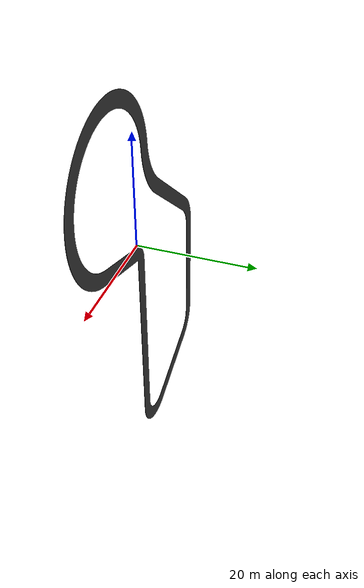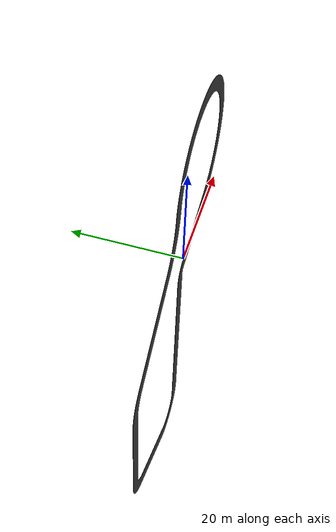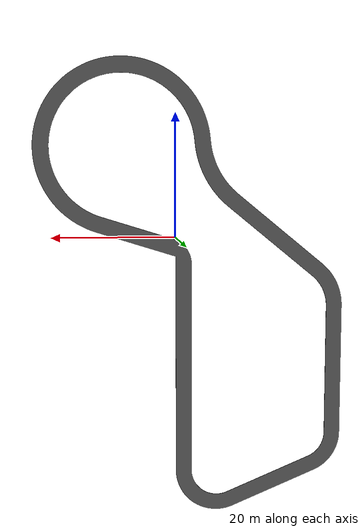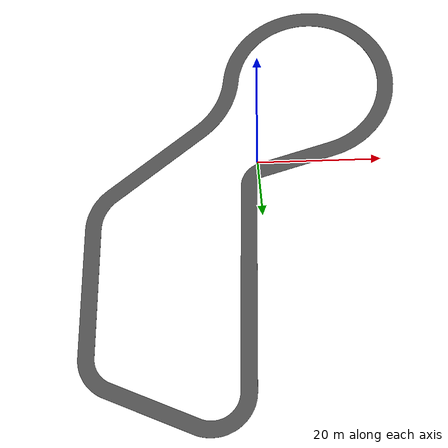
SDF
<?xml version='1.0'?>
<sdf version='1.6'>
  <model name="road2">
    <static>true</static>
    <pose>0 0 0 0 0 0</pose>

    <link name="road2">
      <pose>0 0 0 0 0 0</pose>
      <visual name="road">
      <material>
            <script>
                <uri>model://road2/materials/scripts</uri>
                <uri>model://road2/materials/textures</uri>
                <name>vrc/road</name>
            </script>
        </material>
        <geometry>
          <mesh>
            <uri>model://road2/meshes/RT2_Road.dae</uri>
            <scale>1.7 1.7 1.7</scale>
          </mesh>
        </geometry>
      </visual>
      <collision name="road">
        <geometry>
          <mesh>
            <uri>model://road2/meshes/RT2_Road.dae</uri>
            <scale>1.7 1.7 1.7</scale>
          </mesh>
        </geometry>
      </collision>
    </link>

  </model>
</sdf>
